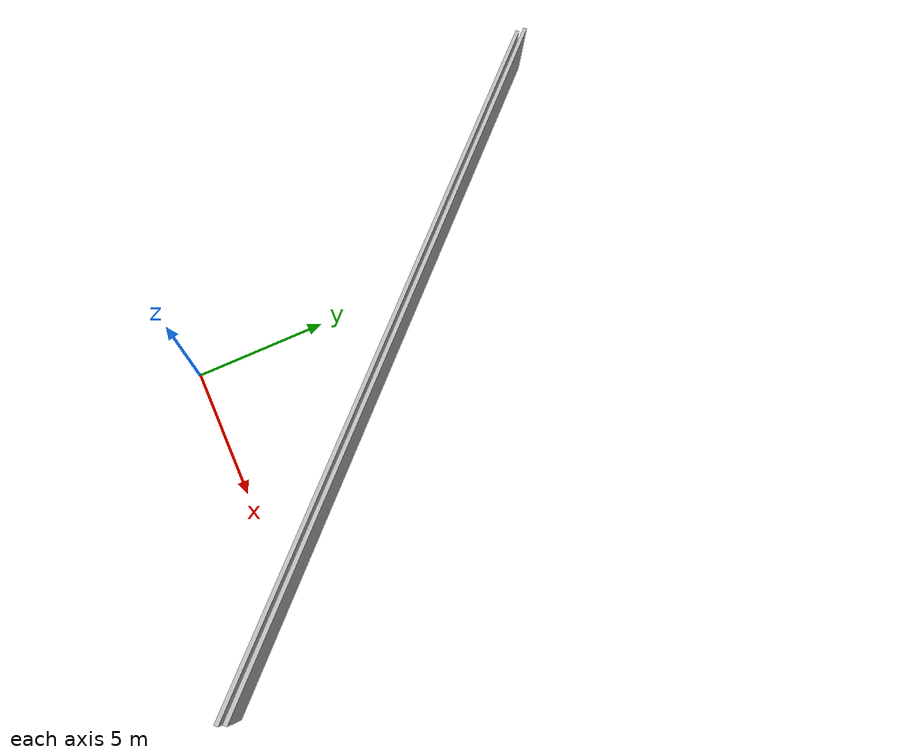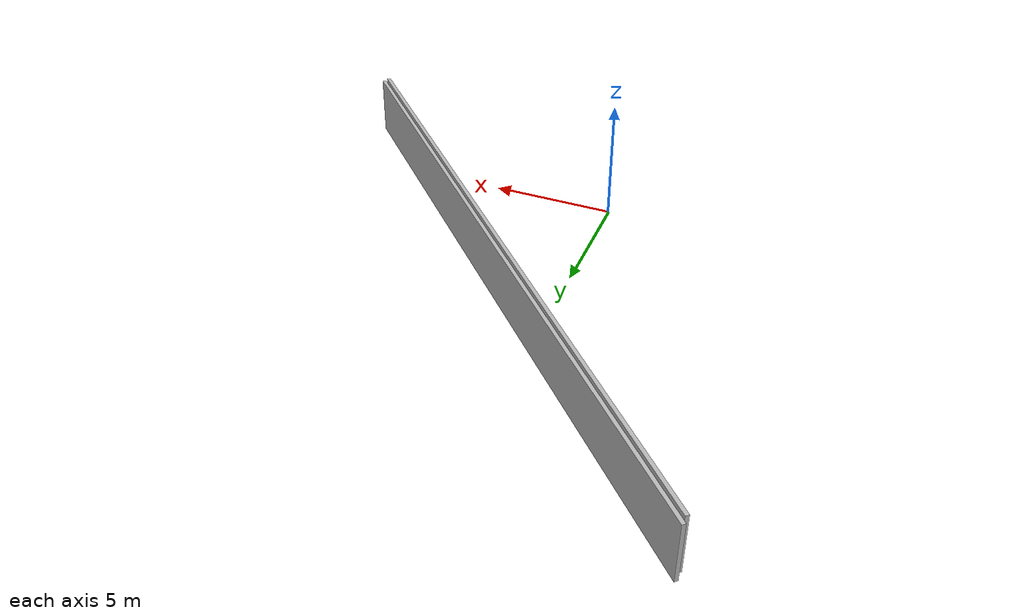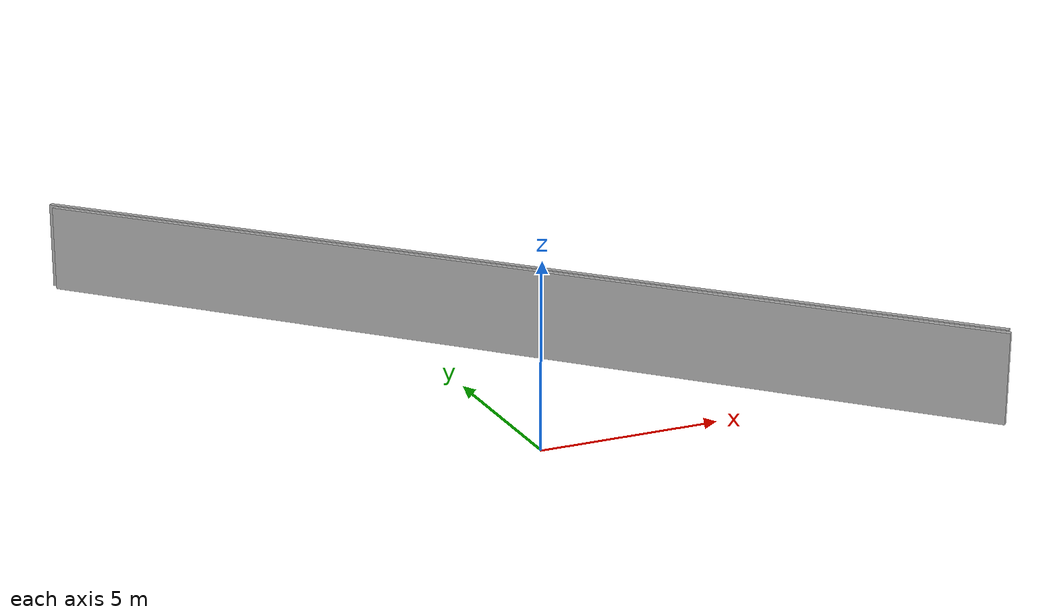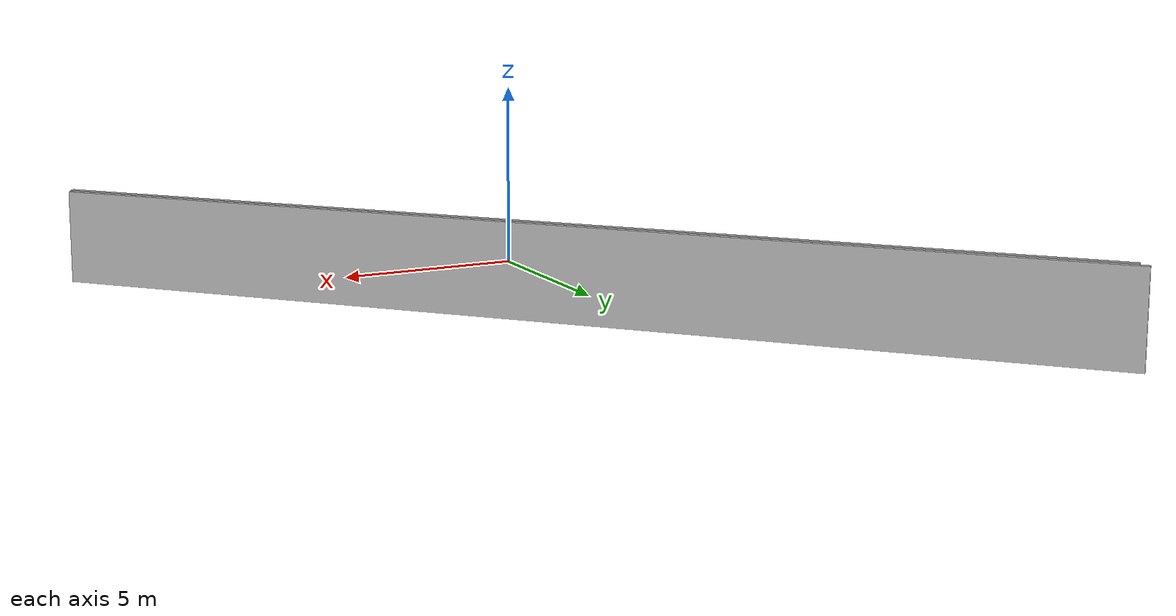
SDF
<?xml version="1.0" ?>
<sdf version="1.6">
  <model name="sps_4202">
    <pose frame="">0 0 0 0 -0 0</pose>
    <static>1</static>
    <self_collide>0</self_collide>
    <allow_auto_disable>0</allow_auto_disable>
    <link name="Wall2764">
      <kinematic>0</kinematic>
      <gravity>1</gravity>
      <self_collide>0</self_collide>
      <collision name="collision">
        <geometry>
          <box>
            <size>28.3501 0.15 2.5</size>
          </box>
        </geometry>
        <pose frame="">0 0 0 0 -0 0</pose>
      </collision>
      <visual name="visual">
        <geometry>
          <box>
            <size>28.3501 0.15 2.5</size>
          </box>
        </geometry>
        <pose frame="">0 0 0 0 -0 0</pose>
        <cast_shadows>1</cast_shadows>
        <transparency>0.0</transparency>
      </visual>
      <pose frame="">1.99056 7.14009 1.25 0 0 -0.814141</pose>
    </link>
    <link name="Wall2765">
      <kinematic>0</kinematic>
      <gravity>1</gravity>
      <self_collide>0</self_collide>
      <collision name="collision">
        <geometry>
          <box>
            <size>28.4962 0.15 2.5</size>
          </box>
        </geometry>
        <pose frame="">0 0 0 0 -0 0</pose>
      </collision>
      <visual name="visual">
        <geometry>
          <box>
            <size>28.4962 0.15 2.5</size>
          </box>
        </geometry>
        <pose frame="">0 0 0 0 -0 0</pose>
        <cast_shadows>1</cast_shadows>
        <transparency>0.0</transparency>
      </visual>
      <pose frame="">2.05117 7.44011 1.25 0 0 -0.814131</pose>
    </link>
  </model>
</sdf>
